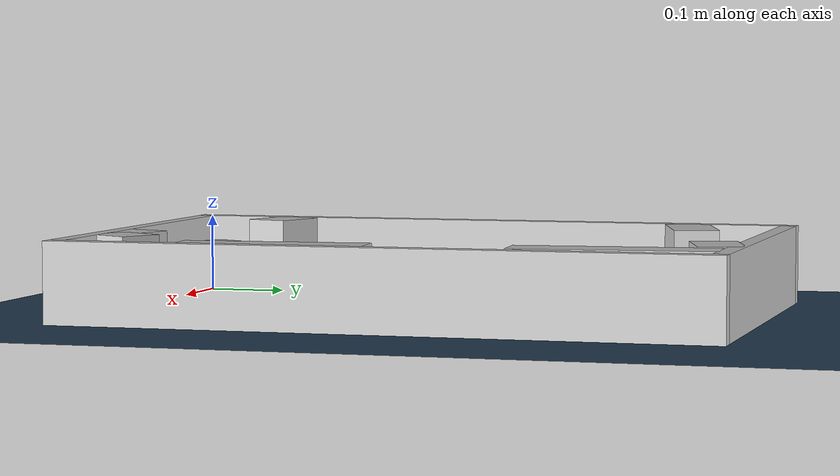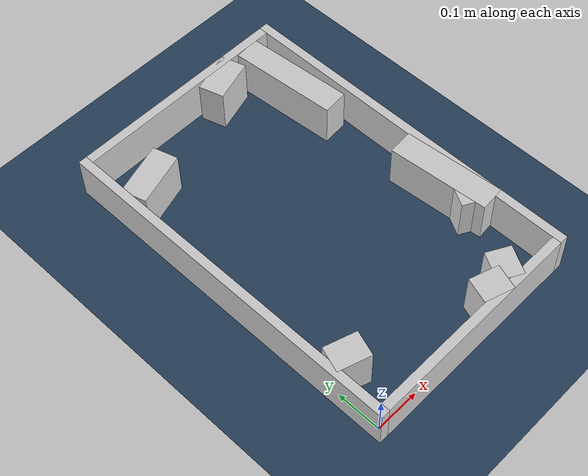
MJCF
<?xml version="1.0" ?>
<mujoco model="generated_real_template">
  <compiler angle="degree"/>
  <option timestep="0.002" integrator="implicitfast" iterations="100" cone="elliptic"/>
  <default>
    <geom density="1"/>
  </default>
  <asset>
    <texture builtin="gradient" height="3072" rgb1="0.3 0.5 0.7" rgb2="0 0 0" type="skybox" width="512"/>
    <texture builtin="checker" height="300" mark="edge" markrgb="0.8 0.8 0.8" name="groundplane" rgb1="0.2 0.3 0.4" rgb2="0.1 0.2 0.3" type="2d" width="300"/>
    <material name="groundplane" reflectance="0.2" texrepeat="5 5" texture="groundplane" texuniform="true"/>
  </asset>
  <worldbody>
    <light dir="0 0 -1" directional="true" pos="0 0 1.5"/>
    <geom name="floor" type="plane" condim="4" friction="0.5 0.005 0.001" material="groundplane" size="0 0 0.05"/>
    <body name="walls">
      <geom name="wall_boundary_left" type="box" condim="4" friction="1.0 0.005 0.0001" rgba="0.8 0.8 0.8 1" pos="-0.010000 0.387500 0.050000" euler="0 0 0.000000" size="0.010000 0.407500 0.050000"/>
      <geom name="wall_boundary_right" type="box" condim="4" friction="1.0 0.005 0.0001" rgba="0.8 0.8 0.8 1" pos="0.500000 0.387500 0.050000" euler="0 0 0.000000" size="0.010000 0.407500 0.050000"/>
      <geom name="wall_boundary_bottom" type="box" condim="4" friction="1.0 0.005 0.0001" rgba="0.8 0.8 0.8 1" pos="0.245000 -0.010000 0.050000" euler="0 0 0.000000" size="0.245000 0.010000 0.050000"/>
      <geom name="wall_boundary_top" type="box" condim="4" friction="1.0 0.005 0.0001" rgba="0.8 0.8 0.8 1" pos="0.245000 0.785000 0.050000" euler="0 0 0.000000" size="0.245000 0.010000 0.050000"/>
      <geom name="wall_inner_1_1" type="box" condim="4" friction="1.0 0.005 0.0001" rgba="0.8 0.8 0.8 1" pos="0.058253 0.671134 0.050000" euler="0 0 16.516082" size="0.060760 0.028500 0.050000"/>
      <geom name="wall_inner_1_2" type="box" condim="4" friction="1.0 0.005 0.0001" rgba="0.8 0.8 0.8 1" pos="0.337538 0.753948 0.050000" euler="0 0 16.516082" size="0.048287 0.028500 0.050000"/>
      <geom name="wall_inner_2_1" type="box" condim="4" friction="1.0 0.005 0.0001" rgba="0.8 0.8 0.8 1" pos="0.468247 0.190139 0.050000" euler="0 0 -118.834562" size="0.034804 0.028500 0.050000"/>
      <geom name="wall_inner_2_2" type="box" condim="4" friction="1.0 0.005 0.0001" rgba="0.8 0.8 0.8 1" pos="0.379589 0.029099 0.050000" euler="0 0 -118.834562" size="0.033218 0.028500 0.050000"/>
      <geom name="wall_inner_3_1" type="box" condim="4" friction="1.0 0.005 0.0001" rgba="0.8 0.8 0.8 1" pos="0.327171 0.017607 0.050000" euler="0 0 161.724922" size="0.033622 0.028500 0.050000"/>
      <geom name="wall_inner_3_2" type="box" condim="4" friction="1.0 0.005 0.0001" rgba="0.8 0.8 0.8 1" pos="0.035408 0.113957 0.050000" euler="0 0 161.724922" size="0.037289 0.028500 0.050000"/>
      <geom name="wall_inner_4_1" type="box" condim="4" friction="1.0 0.005 0.0001" rgba="0.8 0.8 0.8 1" pos="0.439706 0.653665 0.050000" euler="0 0 -85.337831" size="0.121738 0.028500 0.050000"/>
      <geom name="wall_inner_4_2" type="box" condim="4" friction="1.0 0.005 0.0001" rgba="0.8 0.8 0.8 1" pos="0.472371 0.253114 0.050000" euler="0 0 -85.337831" size="0.113462 0.028500 0.050000"/>
    </body>
  </worldbody>
</mujoco>
